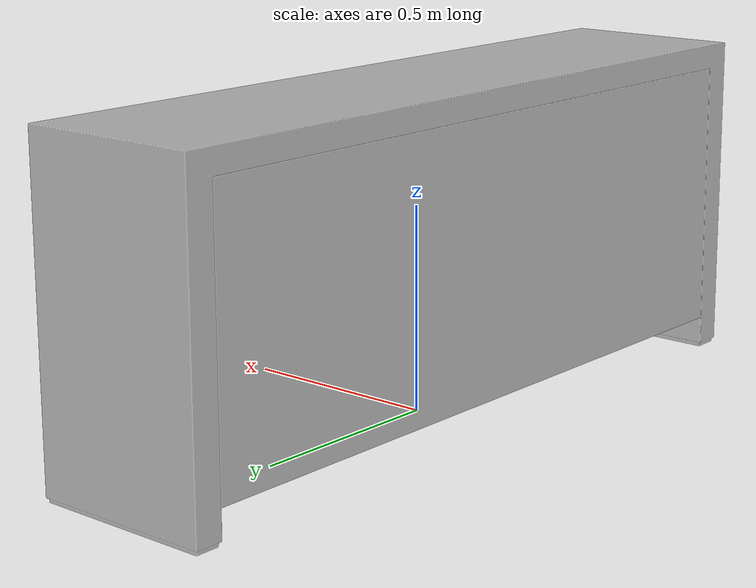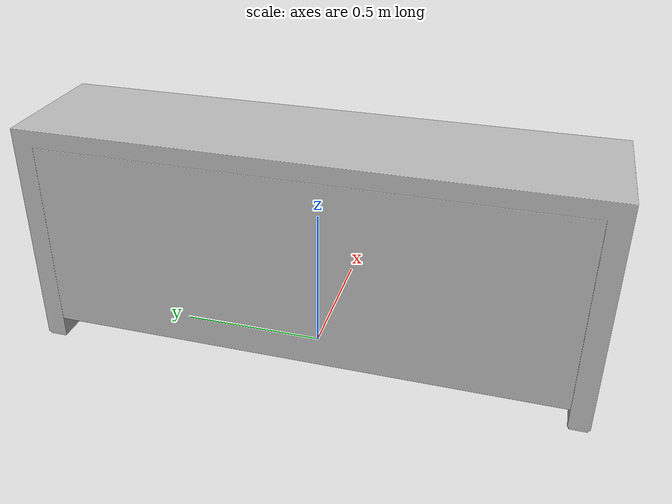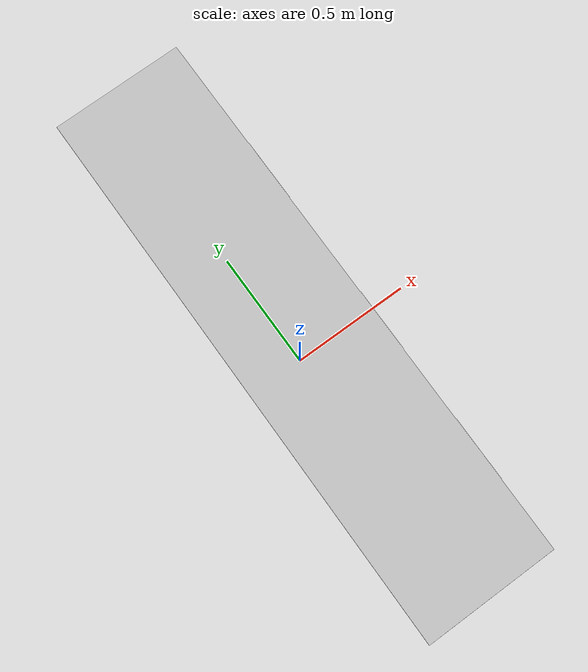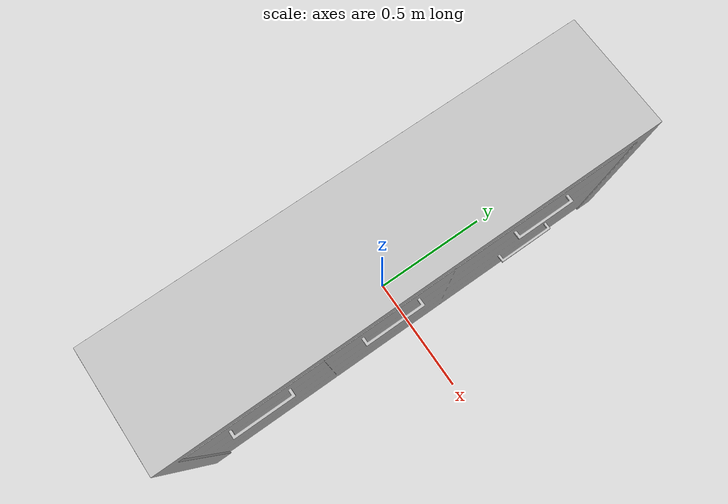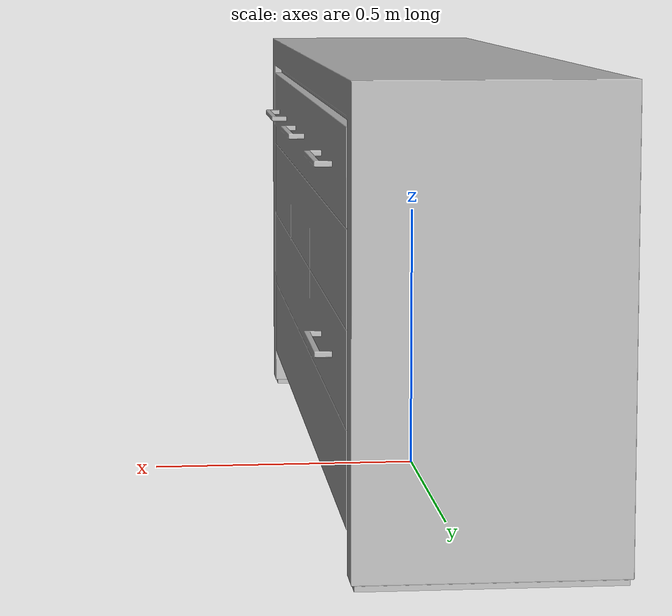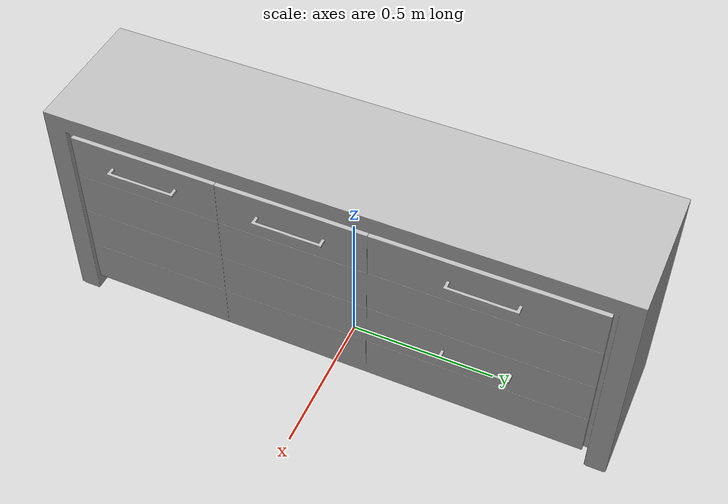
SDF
<?xml version='1.0'?>
<sdf version='1.4'>
  <model name='s__563'>
    <pose>0 0 0 0 0 0</pose>
    <static>true</static>
    <link name='link'>
      <collision name='collision'>
        <pose>0 0 0 0 0 0</pose>
        <geometry>
          <box>
            <size>0.48 1.90001 2</size>
          </box>
        </geometry>
      </collision>
      <visual name='visual'>
        <pose>0 0 0 0 0 0</pose>
        <geometry>
          <mesh><uri>model://s__563/s__563.dae</uri></mesh>
        </geometry>
      </visual>
    </link>
  </model>
</sdf>
